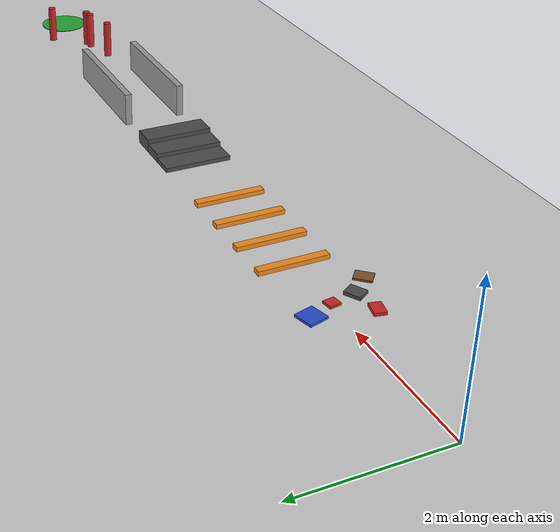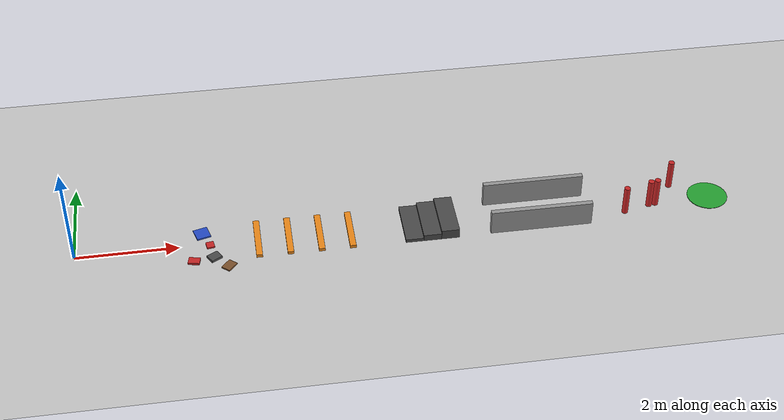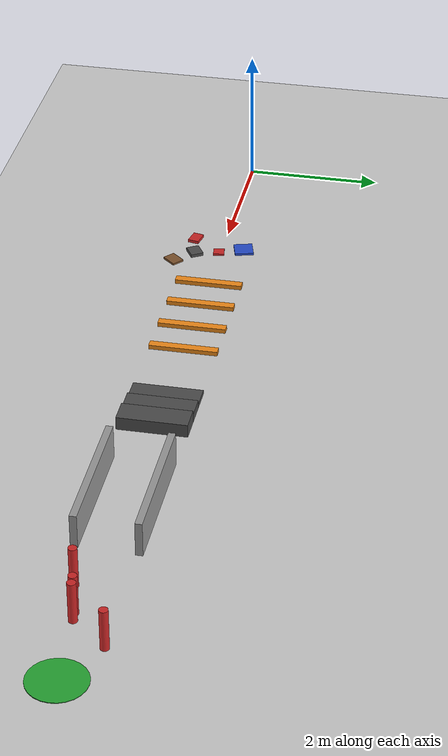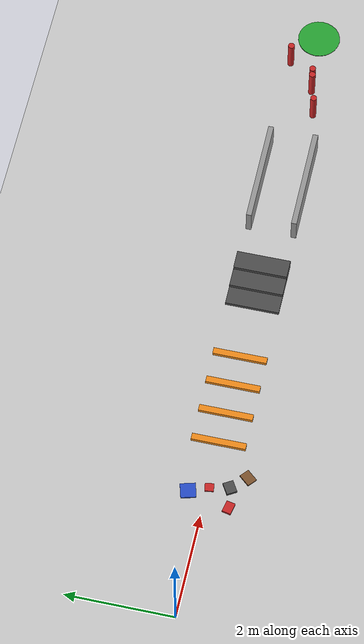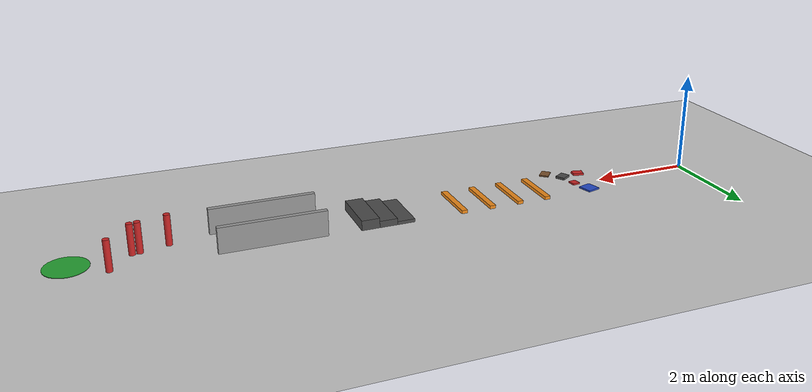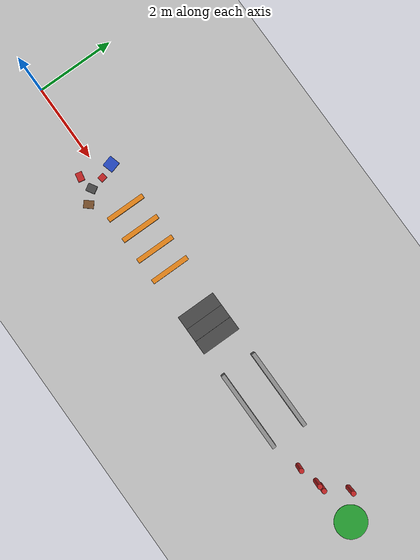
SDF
<?xml version="1.0" ?>
<!-- 由 omni_world.py 自动生成: scene=mixed seed=4 -->
<sdf version="1.5">
  <world name="mixed">
    <physics type="ode">
      <type>world</type>
      <max_step_size>0.001</max_step_size>
      <real_time_update_rate>1000</real_time_update_rate>
      <iters>500</iters>
    </physics>
    <include><uri>model://sun</uri></include>
    <include><uri>model://ground_plane</uri></include>
    <model name="mx_rough_0_0">
      <static>true</static>
      <pose>2.582 -0.030 0.015 0.0000 0.0000 1.7260</pose>
      <link name="link">
        <collision name="collision">
          <geometry><box><size>0.164 0.153 0.031</size></box></geometry>
          <surface><friction><ode><mu>1.0</mu><mu2>1.0</mu2></ode></friction></surface>
        </collision>
        <visual name="visual">
          <geometry><box><size>0.164 0.153 0.031</size></box></geometry>
          <material><script><uri>file://media/materials/scripts/gazebo.material</uri>
            <name>Gazebo/Red</name></script></material>
        </visual>
      </link>
    </model>
    <model name="mx_rough_0_1">
      <static>true</static>
      <pose>2.648 -0.389 0.024 0.0000 0.0000 0.5424</pose>
      <link name="link">
        <collision name="collision">
          <geometry><box><size>0.231 0.192 0.048</size></box></geometry>
          <surface><friction><ode><mu>1.0</mu><mu2>1.0</mu2></ode></friction></surface>
        </collision>
        <visual name="visual">
          <geometry><box><size>0.231 0.192 0.048</size></box></geometry>
          <material><script><uri>file://media/materials/scripts/gazebo.material</uri>
            <name>Gazebo/DarkGrey</name></script></material>
        </visual>
      </link>
    </model>
    <model name="mx_rough_0_2">
      <static>true</static>
      <pose>2.914 -0.664 0.015 0.0000 0.0000 0.8537</pose>
      <link name="link">
        <collision name="collision">
          <geometry><box><size>0.246 0.189 0.029</size></box></geometry>
          <surface><friction><ode><mu>1.0</mu><mu2>1.0</mu2></ode></friction></surface>
        </collision>
        <visual name="visual">
          <geometry><box><size>0.246 0.189 0.029</size></box></geometry>
          <material><script><uri>file://media/materials/scripts/gazebo.material</uri>
            <name>Gazebo/Brown</name></script></material>
        </visual>
      </link>
    </model>
    <model name="mx_rough_0_3">
      <static>true</static>
      <pose>2.440 0.325 0.015 0.0000 0.0000 0.2724</pose>
      <link name="link">
        <collision name="collision">
          <geometry><box><size>0.278 0.282 0.031</size></box></geometry>
          <surface><friction><ode><mu>1.0</mu><mu2>1.0</mu2></ode></friction></surface>
        </collision>
        <visual name="visual">
          <geometry><box><size>0.278 0.282 0.031</size></box></geometry>
          <material><script><uri>file://media/materials/scripts/gazebo.material</uri>
            <name>Gazebo/Blue</name></script></material>
        </visual>
      </link>
    </model>
    <model name="mx_rough_0_4">
      <static>true</static>
      <pose>2.259 -0.451 0.022 0.0000 0.0000 2.9361</pose>
      <link name="link">
        <collision name="collision">
          <geometry><box><size>0.221 0.163 0.044</size></box></geometry>
          <surface><friction><ode><mu>1.0</mu><mu2>1.0</mu2></ode></friction></surface>
        </collision>
        <visual name="visual">
          <geometry><box><size>0.221 0.163 0.044</size></box></geometry>
          <material><script><uri>file://media/materials/scripts/gazebo.material</uri>
            <name>Gazebo/Red</name></script></material>
        </visual>
      </link>
    </model>
    <model name="mx_bump_1_0">
      <static>true</static>
      <pose>3.500 0.000 0.033 0.0000 0.0000 0.0000</pose>
      <link name="link">
        <collision name="collision">
          <geometry><box><size>0.120 1.000 0.065</size></box></geometry>
          <surface><friction><ode><mu>1.0</mu><mu2>1.0</mu2></ode></friction></surface>
        </collision>
        <visual name="visual">
          <geometry><box><size>0.120 1.000 0.065</size></box></geometry>
          <material><script><uri>file://media/materials/scripts/gazebo.material</uri>
            <name>Gazebo/Orange</name></script></material>
        </visual>
      </link>
    </model>
    <model name="mx_bump_1_1">
      <static>true</static>
      <pose>4.100 0.000 0.033 0.0000 0.0000 0.0000</pose>
      <link name="link">
        <collision name="collision">
          <geometry><box><size>0.120 1.000 0.065</size></box></geometry>
          <surface><friction><ode><mu>1.0</mu><mu2>1.0</mu2></ode></friction></surface>
        </collision>
        <visual name="visual">
          <geometry><box><size>0.120 1.000 0.065</size></box></geometry>
          <material><script><uri>file://media/materials/scripts/gazebo.material</uri>
            <name>Gazebo/Orange</name></script></material>
        </visual>
      </link>
    </model>
    <model name="mx_bump_1_2">
      <static>true</static>
      <pose>4.700 0.000 0.033 0.0000 0.0000 0.0000</pose>
      <link name="link">
        <collision name="collision">
          <geometry><box><size>0.120 1.000 0.065</size></box></geometry>
          <surface><friction><ode><mu>1.0</mu><mu2>1.0</mu2></ode></friction></surface>
        </collision>
        <visual name="visual">
          <geometry><box><size>0.120 1.000 0.065</size></box></geometry>
          <material><script><uri>file://media/materials/scripts/gazebo.material</uri>
            <name>Gazebo/Orange</name></script></material>
        </visual>
      </link>
    </model>
    <model name="mx_bump_1_3">
      <static>true</static>
      <pose>5.300 0.000 0.033 0.0000 0.0000 0.0000</pose>
      <link name="link">
        <collision name="collision">
          <geometry><box><size>0.120 1.000 0.065</size></box></geometry>
          <surface><friction><ode><mu>1.0</mu><mu2>1.0</mu2></ode></friction></surface>
        </collision>
        <visual name="visual">
          <geometry><box><size>0.120 1.000 0.065</size></box></geometry>
          <material><script><uri>file://media/materials/scripts/gazebo.material</uri>
            <name>Gazebo/Orange</name></script></material>
        </visual>
      </link>
    </model>
    <model name="mx_step_2_0">
      <static>true</static>
      <pose>6.500 0.000 0.033 0.0000 0.0000 0.0000</pose>
      <link name="link">
        <collision name="collision">
          <geometry><box><size>0.350 1.000 0.065</size></box></geometry>
          <surface><friction><ode><mu>1.0</mu><mu2>1.0</mu2></ode></friction></surface>
        </collision>
        <visual name="visual">
          <geometry><box><size>0.350 1.000 0.065</size></box></geometry>
          <material><script><uri>file://media/materials/scripts/gazebo.material</uri>
            <name>Gazebo/DarkGrey</name></script></material>
        </visual>
      </link>
    </model>
    <model name="mx_step_2_1">
      <static>true</static>
      <pose>6.850 0.000 0.065 0.0000 0.0000 0.0000</pose>
      <link name="link">
        <collision name="collision">
          <geometry><box><size>0.350 1.000 0.130</size></box></geometry>
          <surface><friction><ode><mu>1.0</mu><mu2>1.0</mu2></ode></friction></surface>
        </collision>
        <visual name="visual">
          <geometry><box><size>0.350 1.000 0.130</size></box></geometry>
          <material><script><uri>file://media/materials/scripts/gazebo.material</uri>
            <name>Gazebo/DarkGrey</name></script></material>
        </visual>
      </link>
    </model>
    <model name="mx_step_2_2">
      <static>true</static>
      <pose>7.200 0.000 0.098 0.0000 0.0000 0.0000</pose>
      <link name="link">
        <collision name="collision">
          <geometry><box><size>0.350 1.000 0.195</size></box></geometry>
          <surface><friction><ode><mu>1.0</mu><mu2>1.0</mu2></ode></friction></surface>
        </collision>
        <visual name="visual">
          <geometry><box><size>0.350 1.000 0.195</size></box></geometry>
          <material><script><uri>file://media/materials/scripts/gazebo.material</uri>
            <name>Gazebo/DarkGrey</name></script></material>
        </visual>
      </link>
    </model>
    <model name="mx_wl_3">
      <static>true</static>
      <pose>9.000 0.425 0.250 0.0000 0.0000 0.0000</pose>
      <link name="link">
        <collision name="collision">
          <geometry><box><size>2.000 0.100 0.500</size></box></geometry>
          <surface><friction><ode><mu>1.0</mu><mu2>1.0</mu2></ode></friction></surface>
        </collision>
        <visual name="visual">
          <geometry><box><size>2.000 0.100 0.500</size></box></geometry>
          <material><script><uri>file://media/materials/scripts/gazebo.material</uri>
            <name>Gazebo/Grey</name></script></material>
        </visual>
      </link>
    </model>
    <model name="mx_wr_3">
      <static>true</static>
      <pose>9.000 -0.425 0.250 0.0000 0.0000 0.0000</pose>
      <link name="link">
        <collision name="collision">
          <geometry><box><size>2.000 0.100 0.500</size></box></geometry>
          <surface><friction><ode><mu>1.0</mu><mu2>1.0</mu2></ode></friction></surface>
        </collision>
        <visual name="visual">
          <geometry><box><size>2.000 0.100 0.500</size></box></geometry>
          <material><script><uri>file://media/materials/scripts/gazebo.material</uri>
            <name>Gazebo/Grey</name></script></material>
        </visual>
      </link>
    </model>
    <model name="mx_pole_4_0">
      <static>true</static>
      <pose>11.823 0.418 0.300 0 0 0</pose>
      <link name="link">
        <collision name="collision">
          <geometry><cylinder><radius>0.060</radius><length>0.600</length></cylinder></geometry>
          <surface><friction><ode><mu>1.0</mu><mu2>1.0</mu2></ode></friction></surface>
        </collision>
        <visual name="visual">
          <geometry><cylinder><radius>0.060</radius><length>0.600</length></cylinder></geometry>
          <material><script><uri>file://media/materials/scripts/gazebo.material</uri>
            <name>Gazebo/Red</name></script></material>
        </visual>
      </link>
    </model>
    <model name="mx_pole_4_1">
      <static>true</static>
      <pose>11.263 -0.103 0.300 0 0 0</pose>
      <link name="link">
        <collision name="collision">
          <geometry><cylinder><radius>0.060</radius><length>0.600</length></cylinder></geometry>
          <surface><friction><ode><mu>1.0</mu><mu2>1.0</mu2></ode></friction></surface>
        </collision>
        <visual name="visual">
          <geometry><cylinder><radius>0.060</radius><length>0.600</length></cylinder></geometry>
          <material><script><uri>file://media/materials/scripts/gazebo.material</uri>
            <name>Gazebo/Red</name></script></material>
        </visual>
      </link>
    </model>
    <model name="mx_pole_4_2">
      <static>true</static>
      <pose>11.398 -0.083 0.300 0 0 0</pose>
      <link name="link">
        <collision name="collision">
          <geometry><cylinder><radius>0.060</radius><length>0.600</length></cylinder></geometry>
          <surface><friction><ode><mu>1.0</mu><mu2>1.0</mu2></ode></friction></surface>
        </collision>
        <visual name="visual">
          <geometry><cylinder><radius>0.060</radius><length>0.600</length></cylinder></geometry>
          <material><script><uri>file://media/materials/scripts/gazebo.material</uri>
            <name>Gazebo/Red</name></script></material>
        </visual>
      </link>
    </model>
    <model name="mx_pole_4_3">
      <static>true</static>
      <pose>10.742 -0.234 0.300 0 0 0</pose>
      <link name="link">
        <collision name="collision">
          <geometry><cylinder><radius>0.060</radius><length>0.600</length></cylinder></geometry>
          <surface><friction><ode><mu>1.0</mu><mu2>1.0</mu2></ode></friction></surface>
        </collision>
        <visual name="visual">
          <geometry><cylinder><radius>0.060</radius><length>0.600</length></cylinder></geometry>
          <material><script><uri>file://media/materials/scripts/gazebo.material</uri>
            <name>Gazebo/Red</name></script></material>
        </visual>
      </link>
    </model>
    <model name="goal">
      <static>true</static>
      <pose>12.500 0.000 0.005 0 0 0</pose>
      <link name="link">
        <visual name="visual">
          <geometry><cylinder><radius>0.400</radius><length>0.01</length></cylinder></geometry>
          <material><script><uri>file://media/materials/scripts/gazebo.material</uri>
            <name>Gazebo/Green</name></script></material>
        </visual>
      </link>
    </model>

  </world>
</sdf>
